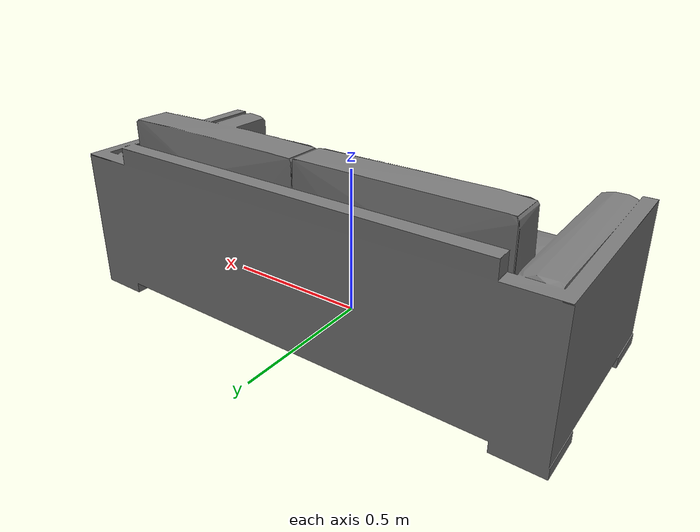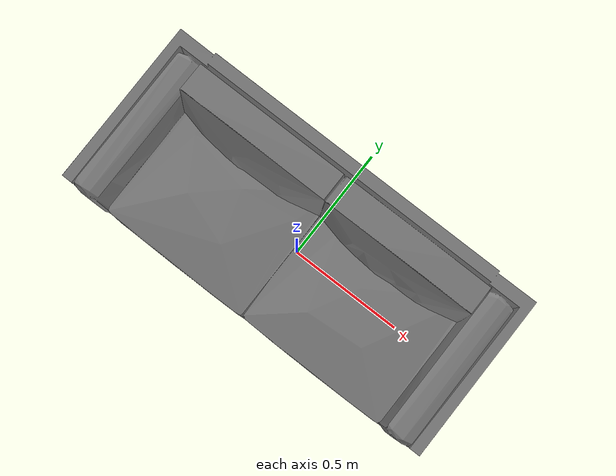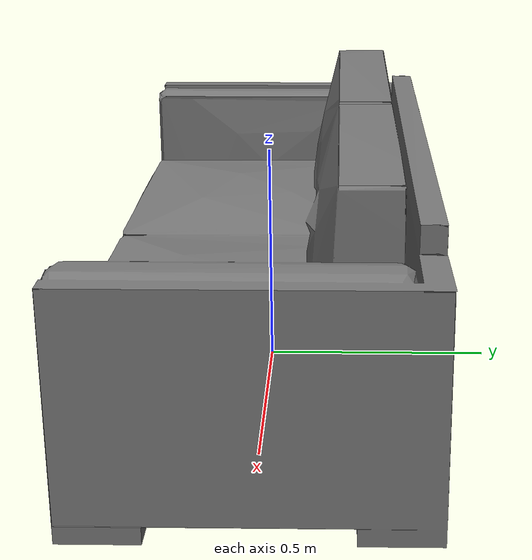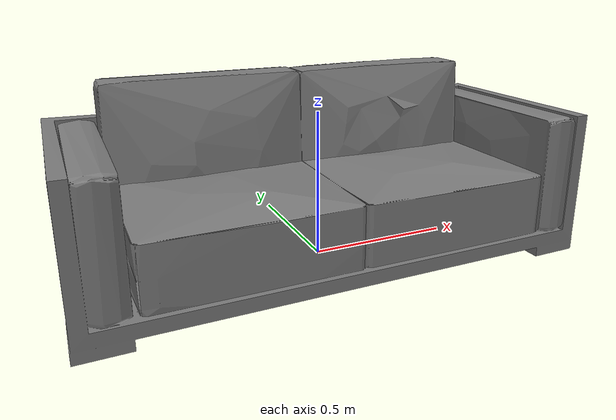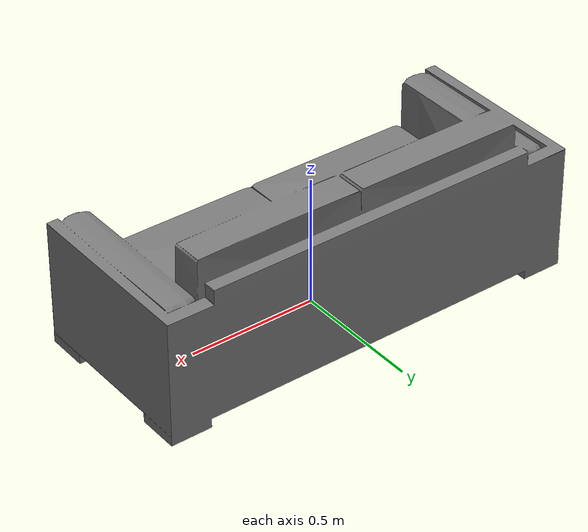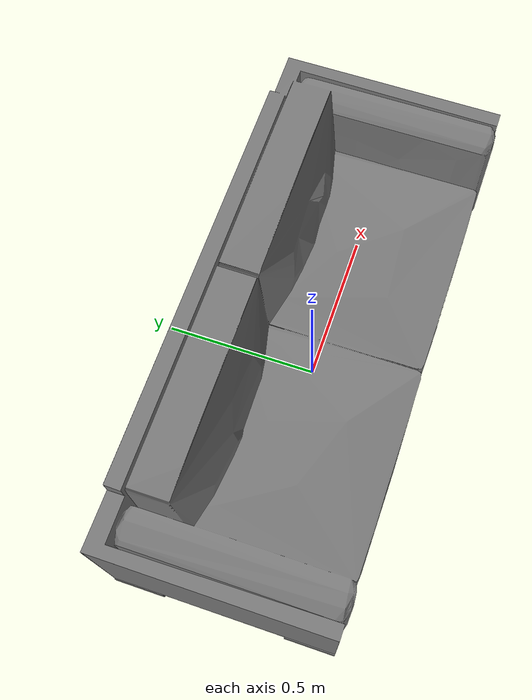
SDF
<?xml version="1.0"?>
<sdf version="1.4">
  <model name="divan">
    <static>true</static>
    <link name="link">
      <pose>0 0 0 0 0 0</pose>
      <collision name="collision">
        <geometry>
          <mesh>
             <uri>model://divan/divan_collision.dae</uri>
	     <scale>0.2 0.2 0.2</scale>
          </mesh>
        </geometry>
      </collision>
      <visual name="visual">
         <geometry>
          <mesh>
            <uri>model://divan/divan_visual.dae</uri>
		<scale>0.2 0.2 0.2</scale>
          </mesh>
        </geometry>
      </visual>
    </link>
  </model>
</sdf>
